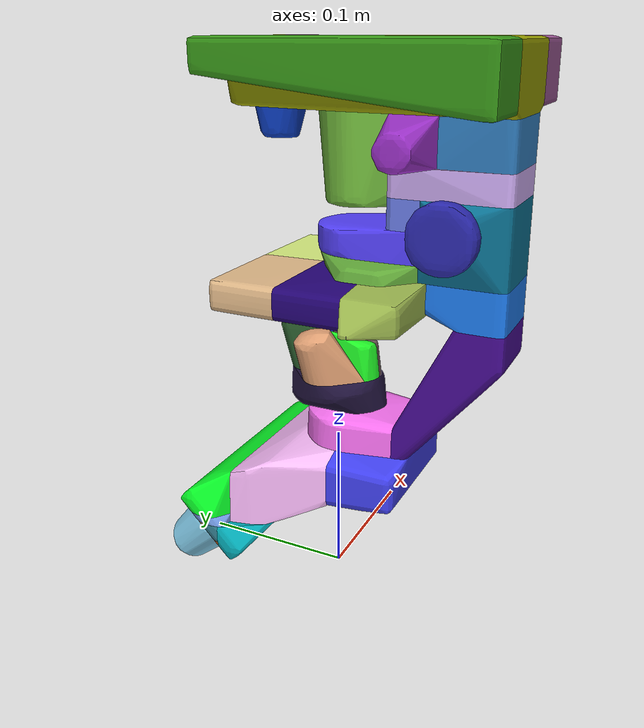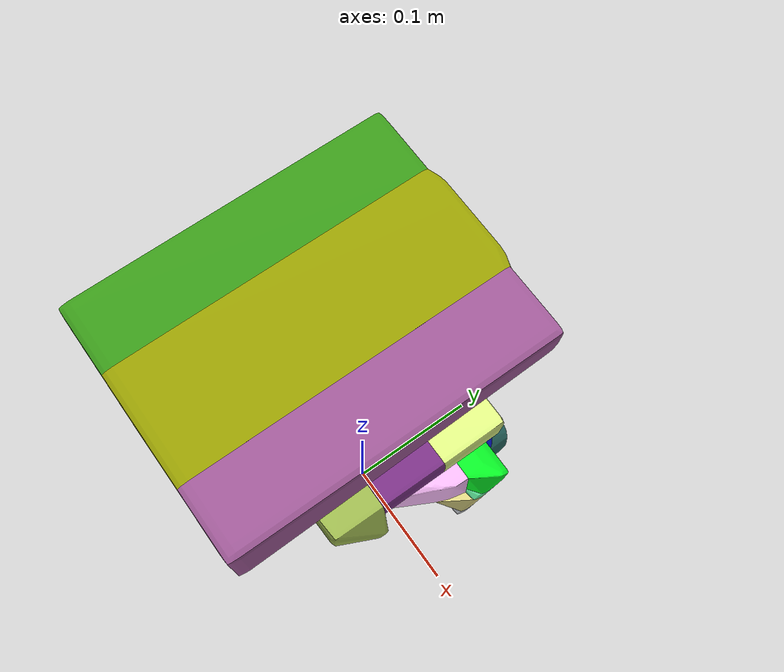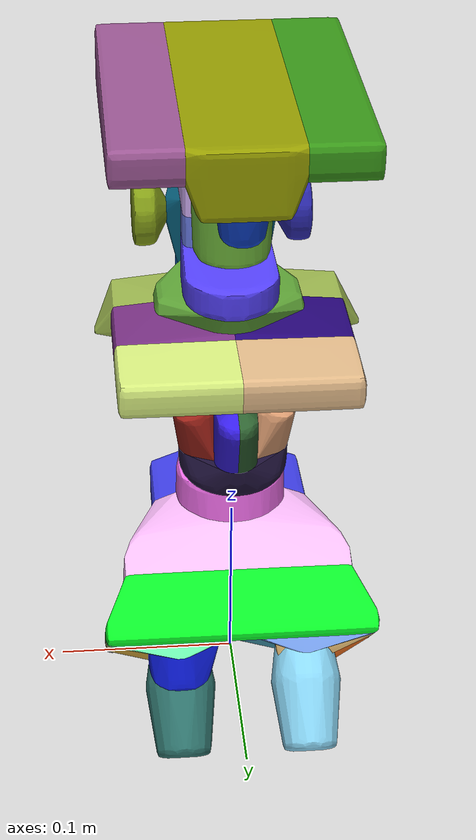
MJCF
<?xml version="1.0" ?>
<mujoco model="dd9e73d51edb43198bd40d0bbd2dd54e">
  <asset>
    <texture type="2d" name="material_0" file="material_0.png"/>
    <material name="material_0" texture="material_0" specular="0.4000000000000001" shininess="0.001"/>
    <mesh file="dd9e73d51edb43198bd40d0bbd2dd54e/dd9e73d51edb43198bd40d0bbd2dd54e.obj" scale="0.7649055059777802 0.7649055059777802 0.7649055059777802"/>
    <mesh file="dd9e73d51edb43198bd40d0bbd2dd54e/dd9e73d51edb43198bd40d0bbd2dd54e_collision_0.obj" scale="0.7649055059777802 0.7649055059777802 0.7649055059777802"/>
    <mesh file="dd9e73d51edb43198bd40d0bbd2dd54e/dd9e73d51edb43198bd40d0bbd2dd54e_collision_1.obj" scale="0.7649055059777802 0.7649055059777802 0.7649055059777802"/>
    <mesh file="dd9e73d51edb43198bd40d0bbd2dd54e/dd9e73d51edb43198bd40d0bbd2dd54e_collision_2.obj" scale="0.7649055059777802 0.7649055059777802 0.7649055059777802"/>
    <mesh file="dd9e73d51edb43198bd40d0bbd2dd54e/dd9e73d51edb43198bd40d0bbd2dd54e_collision_3.obj" scale="0.7649055059777802 0.7649055059777802 0.7649055059777802"/>
    <mesh file="dd9e73d51edb43198bd40d0bbd2dd54e/dd9e73d51edb43198bd40d0bbd2dd54e_collision_4.obj" scale="0.7649055059777802 0.7649055059777802 0.7649055059777802"/>
    <mesh file="dd9e73d51edb43198bd40d0bbd2dd54e/dd9e73d51edb43198bd40d0bbd2dd54e_collision_5.obj" scale="0.7649055059777802 0.7649055059777802 0.7649055059777802"/>
    <mesh file="dd9e73d51edb43198bd40d0bbd2dd54e/dd9e73d51edb43198bd40d0bbd2dd54e_collision_6.obj" scale="0.7649055059777802 0.7649055059777802 0.7649055059777802"/>
    <mesh file="dd9e73d51edb43198bd40d0bbd2dd54e/dd9e73d51edb43198bd40d0bbd2dd54e_collision_7.obj" scale="0.7649055059777802 0.7649055059777802 0.7649055059777802"/>
    <mesh file="dd9e73d51edb43198bd40d0bbd2dd54e/dd9e73d51edb43198bd40d0bbd2dd54e_collision_8.obj" scale="0.7649055059777802 0.7649055059777802 0.7649055059777802"/>
    <mesh file="dd9e73d51edb43198bd40d0bbd2dd54e/dd9e73d51edb43198bd40d0bbd2dd54e_collision_9.obj" scale="0.7649055059777802 0.7649055059777802 0.7649055059777802"/>
    <mesh file="dd9e73d51edb43198bd40d0bbd2dd54e/dd9e73d51edb43198bd40d0bbd2dd54e_collision_10.obj" scale="0.7649055059777802 0.7649055059777802 0.7649055059777802"/>
    <mesh file="dd9e73d51edb43198bd40d0bbd2dd54e/dd9e73d51edb43198bd40d0bbd2dd54e_collision_11.obj" scale="0.7649055059777802 0.7649055059777802 0.7649055059777802"/>
    <mesh file="dd9e73d51edb43198bd40d0bbd2dd54e/dd9e73d51edb43198bd40d0bbd2dd54e_collision_12.obj" scale="0.7649055059777802 0.7649055059777802 0.7649055059777802"/>
    <mesh file="dd9e73d51edb43198bd40d0bbd2dd54e/dd9e73d51edb43198bd40d0bbd2dd54e_collision_13.obj" scale="0.7649055059777802 0.7649055059777802 0.7649055059777802"/>
    <mesh file="dd9e73d51edb43198bd40d0bbd2dd54e/dd9e73d51edb43198bd40d0bbd2dd54e_collision_14.obj" scale="0.7649055059777802 0.7649055059777802 0.7649055059777802"/>
    <mesh file="dd9e73d51edb43198bd40d0bbd2dd54e/dd9e73d51edb43198bd40d0bbd2dd54e_collision_15.obj" scale="0.7649055059777802 0.7649055059777802 0.7649055059777802"/>
    <mesh file="dd9e73d51edb43198bd40d0bbd2dd54e/dd9e73d51edb43198bd40d0bbd2dd54e_collision_16.obj" scale="0.7649055059777802 0.7649055059777802 0.7649055059777802"/>
    <mesh file="dd9e73d51edb43198bd40d0bbd2dd54e/dd9e73d51edb43198bd40d0bbd2dd54e_collision_17.obj" scale="0.7649055059777802 0.7649055059777802 0.7649055059777802"/>
    <mesh file="dd9e73d51edb43198bd40d0bbd2dd54e/dd9e73d51edb43198bd40d0bbd2dd54e_collision_18.obj" scale="0.7649055059777802 0.7649055059777802 0.7649055059777802"/>
    <mesh file="dd9e73d51edb43198bd40d0bbd2dd54e/dd9e73d51edb43198bd40d0bbd2dd54e_collision_19.obj" scale="0.7649055059777802 0.7649055059777802 0.7649055059777802"/>
    <mesh file="dd9e73d51edb43198bd40d0bbd2dd54e/dd9e73d51edb43198bd40d0bbd2dd54e_collision_20.obj" scale="0.7649055059777802 0.7649055059777802 0.7649055059777802"/>
    <mesh file="dd9e73d51edb43198bd40d0bbd2dd54e/dd9e73d51edb43198bd40d0bbd2dd54e_collision_21.obj" scale="0.7649055059777802 0.7649055059777802 0.7649055059777802"/>
    <mesh file="dd9e73d51edb43198bd40d0bbd2dd54e/dd9e73d51edb43198bd40d0bbd2dd54e_collision_22.obj" scale="0.7649055059777802 0.7649055059777802 0.7649055059777802"/>
    <mesh file="dd9e73d51edb43198bd40d0bbd2dd54e/dd9e73d51edb43198bd40d0bbd2dd54e_collision_23.obj" scale="0.7649055059777802 0.7649055059777802 0.7649055059777802"/>
    <mesh file="dd9e73d51edb43198bd40d0bbd2dd54e/dd9e73d51edb43198bd40d0bbd2dd54e_collision_24.obj" scale="0.7649055059777802 0.7649055059777802 0.7649055059777802"/>
    <mesh file="dd9e73d51edb43198bd40d0bbd2dd54e/dd9e73d51edb43198bd40d0bbd2dd54e_collision_25.obj" scale="0.7649055059777802 0.7649055059777802 0.7649055059777802"/>
    <mesh file="dd9e73d51edb43198bd40d0bbd2dd54e/dd9e73d51edb43198bd40d0bbd2dd54e_collision_26.obj" scale="0.7649055059777802 0.7649055059777802 0.7649055059777802"/>
    <mesh file="dd9e73d51edb43198bd40d0bbd2dd54e/dd9e73d51edb43198bd40d0bbd2dd54e_collision_27.obj" scale="0.7649055059777802 0.7649055059777802 0.7649055059777802"/>
    <mesh file="dd9e73d51edb43198bd40d0bbd2dd54e/dd9e73d51edb43198bd40d0bbd2dd54e_collision_28.obj" scale="0.7649055059777802 0.7649055059777802 0.7649055059777802"/>
    <mesh file="dd9e73d51edb43198bd40d0bbd2dd54e/dd9e73d51edb43198bd40d0bbd2dd54e_collision_29.obj" scale="0.7649055059777802 0.7649055059777802 0.7649055059777802"/>
    <mesh file="dd9e73d51edb43198bd40d0bbd2dd54e/dd9e73d51edb43198bd40d0bbd2dd54e_collision_30.obj" scale="0.7649055059777802 0.7649055059777802 0.7649055059777802"/>
    <mesh file="dd9e73d51edb43198bd40d0bbd2dd54e/dd9e73d51edb43198bd40d0bbd2dd54e_collision_31.obj" scale="0.7649055059777802 0.7649055059777802 0.7649055059777802"/>
    <mesh file="dd9e73d51edb43198bd40d0bbd2dd54e/dd9e73d51edb43198bd40d0bbd2dd54e_collision_32.obj" scale="0.7649055059777802 0.7649055059777802 0.7649055059777802"/>
    <mesh file="dd9e73d51edb43198bd40d0bbd2dd54e/dd9e73d51edb43198bd40d0bbd2dd54e_collision_33.obj" scale="0.7649055059777802 0.7649055059777802 0.7649055059777802"/>
    <mesh file="dd9e73d51edb43198bd40d0bbd2dd54e/dd9e73d51edb43198bd40d0bbd2dd54e_collision_34.obj" scale="0.7649055059777802 0.7649055059777802 0.7649055059777802"/>
    <mesh file="dd9e73d51edb43198bd40d0bbd2dd54e/dd9e73d51edb43198bd40d0bbd2dd54e_collision_35.obj" scale="0.7649055059777802 0.7649055059777802 0.7649055059777802"/>
    <mesh file="dd9e73d51edb43198bd40d0bbd2dd54e/dd9e73d51edb43198bd40d0bbd2dd54e_collision_36.obj" scale="0.7649055059777802 0.7649055059777802 0.7649055059777802"/>
    <mesh file="dd9e73d51edb43198bd40d0bbd2dd54e/dd9e73d51edb43198bd40d0bbd2dd54e_collision_37.obj" scale="0.7649055059777802 0.7649055059777802 0.7649055059777802"/>
    <mesh file="dd9e73d51edb43198bd40d0bbd2dd54e/dd9e73d51edb43198bd40d0bbd2dd54e_collision_38.obj" scale="0.7649055059777802 0.7649055059777802 0.7649055059777802"/>
    <mesh file="dd9e73d51edb43198bd40d0bbd2dd54e/dd9e73d51edb43198bd40d0bbd2dd54e_collision_39.obj" scale="0.7649055059777802 0.7649055059777802 0.7649055059777802"/>
    <mesh file="dd9e73d51edb43198bd40d0bbd2dd54e/dd9e73d51edb43198bd40d0bbd2dd54e_collision_40.obj" scale="0.7649055059777802 0.7649055059777802 0.7649055059777802"/>
    <mesh file="dd9e73d51edb43198bd40d0bbd2dd54e/dd9e73d51edb43198bd40d0bbd2dd54e_collision_41.obj" scale="0.7649055059777802 0.7649055059777802 0.7649055059777802"/>
    <mesh file="dd9e73d51edb43198bd40d0bbd2dd54e/dd9e73d51edb43198bd40d0bbd2dd54e_collision_42.obj" scale="0.7649055059777802 0.7649055059777802 0.7649055059777802"/>
    <mesh file="dd9e73d51edb43198bd40d0bbd2dd54e/dd9e73d51edb43198bd40d0bbd2dd54e_collision_43.obj" scale="0.7649055059777802 0.7649055059777802 0.7649055059777802"/>
  </asset>
  <worldbody>
    <body name="dd9e73d51edb43198bd40d0bbd2dd54e">
      <inertial pos="0 0 0.1750" mass="0.02" diaginertia="0.000287 0.000241 0.000119"/>
      <geom material="material_0" mesh="dd9e73d51edb43198bd40d0bbd2dd54e" class="visual"/>
      <geom mesh="dd9e73d51edb43198bd40d0bbd2dd54e_collision_0" rgba="0.2768690876450599 0.04557511205230447 0.5748985647426756 1" class="collision"/>
      <geom mesh="dd9e73d51edb43198bd40d0bbd2dd54e_collision_1" rgba="0.2541601769578615 0.2551390604316287 0.9426116864562265 1" class="collision"/>
      <geom mesh="dd9e73d51edb43198bd40d0bbd2dd54e_collision_2" rgba="0.22128864179325913 0.5901350679965829 0.09523179636533652 1" class="collision"/>
      <geom mesh="dd9e73d51edb43198bd40d0bbd2dd54e_collision_3" rgba="0.057252540355101966 0.2654390353545093 0.8144647308091926 1" class="collision"/>
      <geom mesh="dd9e73d51edb43198bd40d0bbd2dd54e_collision_4" rgba="0.5142739312420425 0.6140312529660936 0.09082800444365136 1" class="collision"/>
      <geom mesh="dd9e73d51edb43198bd40d0bbd2dd54e_collision_5" rgba="0.6136378413023639 0.7179438704718413 0.3094134876461323 1" class="collision"/>
      <geom mesh="dd9e73d51edb43198bd40d0bbd2dd54e_collision_6" rgba="0.9631852873038891 0.43941027290980106 0.9355929982084021 1" class="collision"/>
      <geom mesh="dd9e73d51edb43198bd40d0bbd2dd54e_collision_7" rgba="0.1194713720331414 0.4881949115446622 0.9384258977531442 1" class="collision"/>
      <geom mesh="dd9e73d51edb43198bd40d0bbd2dd54e_collision_8" rgba="0.18406000511214082 0.45450226890486134 0.42765143418605367 1" class="collision"/>
      <geom mesh="dd9e73d51edb43198bd40d0bbd2dd54e_collision_9" rgba="0.46151768168262475 0.7534089226321579 0.2487022086947439 1" class="collision"/>
      <geom mesh="dd9e73d51edb43198bd40d0bbd2dd54e_collision_10" rgba="0.12052530711781884 0.07022834306739445 0.22547761664532473 1" class="collision"/>
      <geom mesh="dd9e73d51edb43198bd40d0bbd2dd54e_collision_11" rgba="0.6073166460364632 0.34040940267498454 0.5773699145447923 1" class="collision"/>
      <geom mesh="dd9e73d51edb43198bd40d0bbd2dd54e_collision_12" rgba="0.9754637383487317 0.7309524769192068 0.9759428839271233 1" class="collision"/>
      <geom mesh="dd9e73d51edb43198bd40d0bbd2dd54e_collision_13" rgba="0.5855370817193741 0.6106818503755822 0.00679267471063616 1" class="collision"/>
      <geom mesh="dd9e73d51edb43198bd40d0bbd2dd54e_collision_14" rgba="0.8759979889946379 0.6257619840313405 0.45248115334487393 1" class="collision"/>
      <geom mesh="dd9e73d51edb43198bd40d0bbd2dd54e_collision_15" rgba="0.6170291517369286 0.13406217336463666 0.09841104390749766 1" class="collision"/>
      <geom mesh="dd9e73d51edb43198bd40d0bbd2dd54e_collision_16" rgba="0.4167405121810881 0.48974628600764747 0.8978395765395348 1" class="collision"/>
      <geom mesh="dd9e73d51edb43198bd40d0bbd2dd54e_collision_17" rgba="0.4725226551000037 0.18893579322129972 0.516744026318882 1" class="collision"/>
      <geom mesh="dd9e73d51edb43198bd40d0bbd2dd54e_collision_18" rgba="0.5339220239263764 0.8322990048320068 0.9541275219367539 1" class="collision"/>
      <geom mesh="dd9e73d51edb43198bd40d0bbd2dd54e_collision_19" rgba="0.3296461611549152 0.2537032514382953 0.981529678021903 1" class="collision"/>
      <geom mesh="dd9e73d51edb43198bd40d0bbd2dd54e_collision_20" rgba="0.6041185595450407 0.18798356292793839 0.7768494027597231 1" class="collision"/>
      <geom mesh="dd9e73d51edb43198bd40d0bbd2dd54e_collision_21" rgba="0.19946715566425188 0.5081639671408941 0.7719852326641146 1" class="collision"/>
      <geom mesh="dd9e73d51edb43198bd40d0bbd2dd54e_collision_22" rgba="0.8549489916412617 0.9464779868086426 0.5043977317489992 1" class="collision"/>
      <geom mesh="dd9e73d51edb43198bd40d0bbd2dd54e_collision_23" rgba="0.8236386126018788 0.6911680971778421 0.9723474142953342 1" class="collision"/>
      <geom mesh="dd9e73d51edb43198bd40d0bbd2dd54e_collision_24" rgba="0.011198509980535065 0.6634705166868444 0.7064391658722288 1" class="collision"/>
      <geom mesh="dd9e73d51edb43198bd40d0bbd2dd54e_collision_25" rgba="0.37616128965277995 0.6508573773840715 0.2194592688004473 1" class="collision"/>
      <geom mesh="dd9e73d51edb43198bd40d0bbd2dd54e_collision_26" rgba="0.17116613696147065 0.1608685574059625 0.6744192034396547 1" class="collision"/>
      <geom mesh="dd9e73d51edb43198bd40d0bbd2dd54e_collision_27" rgba="0.04189430256637028 0.449677284145358 0.580180171356145 1" class="collision"/>
      <geom mesh="dd9e73d51edb43198bd40d0bbd2dd54e_collision_28" rgba="0.019765912445272482 0.07038475265890132 0.6910730431389629 1" class="collision"/>
      <geom mesh="dd9e73d51edb43198bd40d0bbd2dd54e_collision_29" rgba="0.03563282693027314 0.9974019260219156 0.1582308815595389 1" class="collision"/>
      <geom mesh="dd9e73d51edb43198bd40d0bbd2dd54e_collision_30" rgba="0.894810352721401 0.7352019803150609 0.5438799763345127 1" class="collision"/>
      <geom mesh="dd9e73d51edb43198bd40d0bbd2dd54e_collision_31" rgba="0.14827324899862837 0.01720973256221703 0.4718547506681552 1" class="collision"/>
      <geom mesh="dd9e73d51edb43198bd40d0bbd2dd54e_collision_32" rgba="0.8548742396009096 0.8220010680499383 0.5072964409938393 1" class="collision"/>
      <geom mesh="dd9e73d51edb43198bd40d0bbd2dd54e_collision_33" rgba="0.20129359045149642 0.4955751160409605 0.5677995644493128 1" class="collision"/>
      <geom mesh="dd9e73d51edb43198bd40d0bbd2dd54e_collision_34" rgba="0.4369400168123675 0.5911949728188687 0.8786840437620538 1" class="collision"/>
      <geom mesh="dd9e73d51edb43198bd40d0bbd2dd54e_collision_35" rgba="0.21634332333427608 0.1191985197289066 0.9085368927711354 1" class="collision"/>
      <geom mesh="dd9e73d51edb43198bd40d0bbd2dd54e_collision_36" rgba="0.42919623890568603 0.3498526600428121 0.3460284262078257 1" class="collision"/>
      <geom mesh="dd9e73d51edb43198bd40d0bbd2dd54e_collision_37" rgba="0.713647030071924 0.556558335548032 0.1827377993171142 1" class="collision"/>
      <geom mesh="dd9e73d51edb43198bd40d0bbd2dd54e_collision_38" rgba="0.4154422652099379 0.9926922772921285 0.6686152878362934 1" class="collision"/>
      <geom mesh="dd9e73d51edb43198bd40d0bbd2dd54e_collision_39" rgba="0.6766070117681179 0.6914833378526883 0.7107421468347291 1" class="collision"/>
      <geom mesh="dd9e73d51edb43198bd40d0bbd2dd54e_collision_40" rgba="0.1794511653771994 0.383280365252328 0.18907629383584357 1" class="collision"/>
      <geom mesh="dd9e73d51edb43198bd40d0bbd2dd54e_collision_41" rgba="0.12015705442632585 0.9265558451279957 0.14291999287977142 1" class="collision"/>
      <geom mesh="dd9e73d51edb43198bd40d0bbd2dd54e_collision_42" rgba="0.8464126836459865 0.6938343808130313 0.4230238577668788 1" class="collision"/>
      <geom mesh="dd9e73d51edb43198bd40d0bbd2dd54e_collision_43" rgba="0.9662579901757145 0.4434206259338527 0.11039692694809056 1" class="collision"/>
      <site class="grasppoint" pos="0 0 0.2800"/>
      <site class="grasppoint" pos="0 0 0.3062"/>
      <site class="grasppoint" pos="0 0 0.3325"/>
    </body>
  </worldbody>
  <compiler boundmass="0.015" boundinertia="1e-05" angle="radian"/>
  <default>
    <default class="visual">
      <geom group="2" type="mesh" contype="0" conaffinity="0" density="50"/>
    </default>
    <default class="collision">
      <geom type="mesh" density="50" friction="1.5 0.1 0.1" solimp="0.9 0.95 0.001" solref="0.02 1"/>
    </default>
    <default class="grasppoint">
      <site type="sphere" size="0.005" group="4" rgba="0 0 1 1"/>
    </default>
  </default>
</mujoco>
